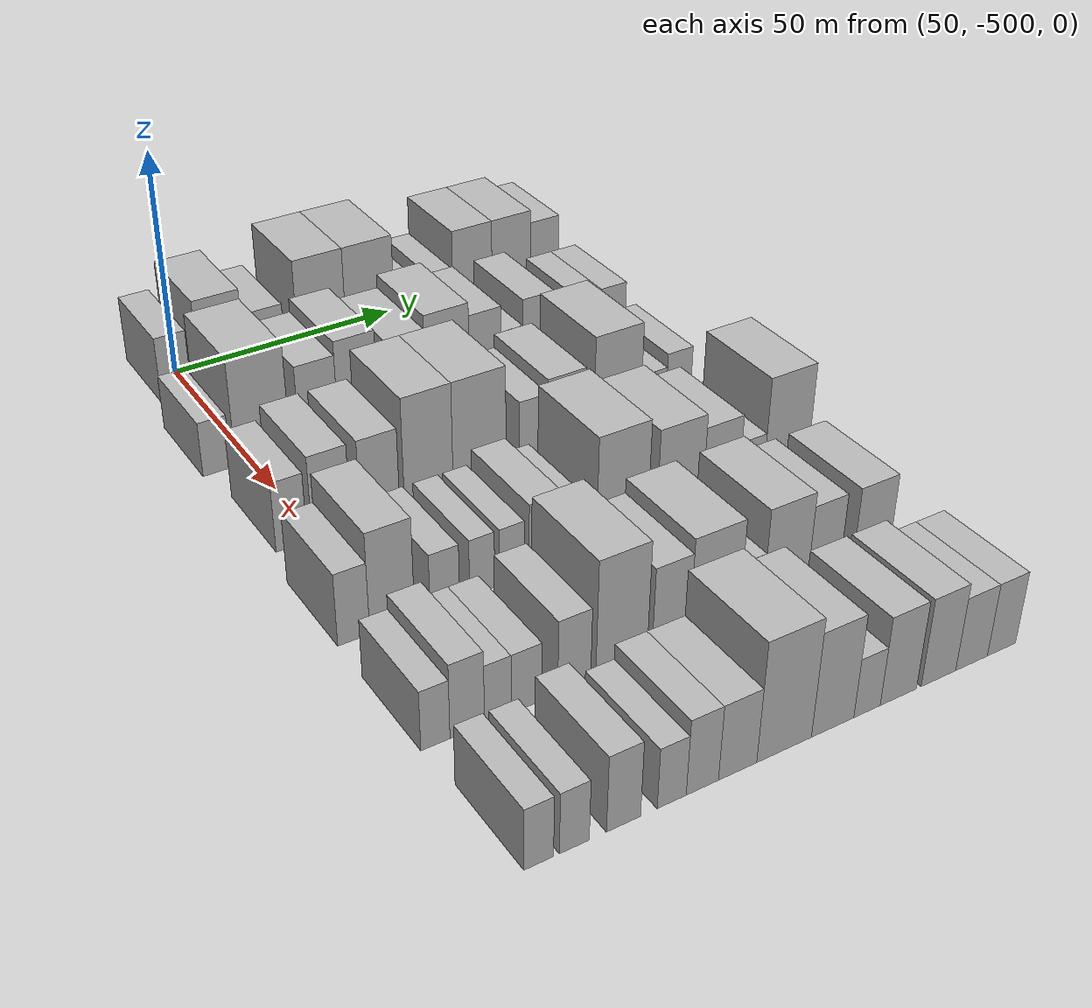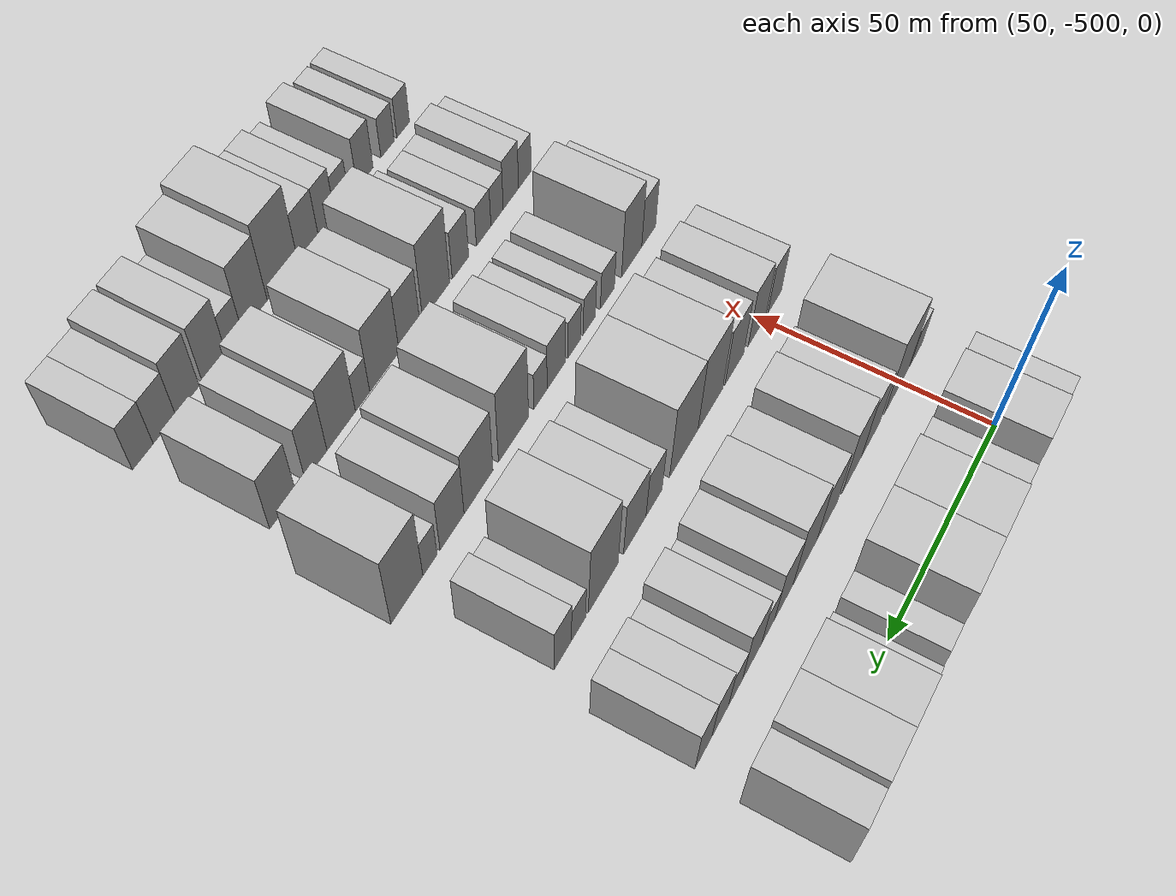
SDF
<sdf version="1.6">
 <world name="default">
  <model name="building_1">
   <static>1</static>
   <pose>50.0000 -503.6924 0 0.000000 0.000000 0.000000</pose>
   <link name="link">
    <pose>0 0 7.50 0 0 0</pose>
    <collision name="collision"><geometry><box><size>20.0000 6.6153 15.0000</size></box></geometry></collision>
    <visual name="visual">
     <cast_shadows>0</cast_shadows>
     <geometry><box><size>20.0000 6.6153 15.0000</size></box></geometry>
     <material>
      <script>
       <uri>model://HANNAS_wall/materials/scripts</uri>
       <uri>model://HANNAS_wall/materials/textures</uri>
       <name>vrc/HANNAS_wall</name>
      </script>
     </material>
    </visual>
   </link>
  </model>
  <model name="building_2">
   <static>1</static>
   <pose>50.0000 -493.3215 0 0.000000 0.000000 0.000000</pose>
   <link name="link">
    <pose>0 0 10.50 0 0 0</pose>
    <collision name="collision"><geometry><box><size>20.0000 10.1265 21.0000</size></box></geometry></collision>
    <visual name="visual">
     <cast_shadows>0</cast_shadows>
     <geometry><box><size>20.0000 10.1265 21.0000</size></box></geometry>
     <material>
      <script>
       <uri>model://HANNAS_wall/materials/scripts</uri>
       <uri>model://HANNAS_wall/materials/textures</uri>
       <name>vrc/HANNAS_wall</name>
      </script>
     </material>
    </visual>
   </link>
  </model>
  <model name="building_3">
   <static>1</static>
   <pose>50.0000 -482.7223 0 0.000000 0.000000 0.000000</pose>
   <link name="link">
    <pose>0 0 7.50 0 0 0</pose>
    <collision name="collision"><geometry><box><size>20.0000 7.0718 15.0000</size></box></geometry></collision>
    <visual name="visual">
     <cast_shadows>0</cast_shadows>
     <geometry><box><size>20.0000 7.0718 15.0000</size></box></geometry>
     <material>
      <script>
       <uri>model://HANNAS_wall/materials/scripts</uri>
       <uri>model://HANNAS_wall/materials/textures</uri>
       <name>vrc/HANNAS_wall</name>
      </script>
     </material>
    </visual>
   </link>
  </model>
  <model name="building_4">
   <static>1</static>
   <pose>50.0000 -470.5468 0 0.000000 0.000000 0.000000</pose>
   <link name="link">
    <pose>0 0 12.00 0 0 0</pose>
    <collision name="collision"><geometry><box><size>20.0000 11.2794 24.0000</size></box></geometry></collision>
    <visual name="visual">
     <cast_shadows>0</cast_shadows>
     <geometry><box><size>20.0000 11.2794 24.0000</size></box></geometry>
     <material>
      <script>
       <uri>model://HANNAS_wall/materials/scripts</uri>
       <uri>model://HANNAS_wall/materials/textures</uri>
       <name>vrc/HANNAS_wall</name>
      </script>
     </material>
    </visual>
   </link>
  </model>
  <model name="building_5">
   <static>1</static>
   <pose>50.0000 -459.0999 0 0.000000 0.000000 0.000000</pose>
   <link name="link">
    <pose>0 0 12.00 0 0 0</pose>
    <collision name="collision"><geometry><box><size>20.0000 11.6143 24.0000</size></box></geometry></collision>
    <visual name="visual">
     <cast_shadows>0</cast_shadows>
     <geometry><box><size>20.0000 11.6143 24.0000</size></box></geometry>
     <material>
      <script>
       <uri>model://HANNAS_wall/materials/scripts</uri>
       <uri>model://HANNAS_wall/materials/textures</uri>
       <name>vrc/HANNAS_wall</name>
      </script>
     </material>
    </visual>
   </link>
  </model>
  <model name="building_6">
   <static>1</static>
   <pose>50.0000 -450.4534 0 0.000000 0.000000 0.000000</pose>
   <link name="link">
    <pose>0 0 6.00 0 0 0</pose>
    <collision name="collision"><geometry><box><size>20.0000 5.6787 12.0000</size></box></geometry></collision>
    <visual name="visual">
     <cast_shadows>0</cast_shadows>
     <geometry><box><size>20.0000 5.6787 12.0000</size></box></geometry>
     <material>
      <script>
       <uri>model://HANNAS_wall/materials/scripts</uri>
       <uri>model://HANNAS_wall/materials/textures</uri>
       <name>vrc/HANNAS_wall</name>
      </script>
     </material>
    </visual>
   </link>
  </model>
  <model name="building_7">
   <static>1</static>
   <pose>50.0000 -441.7250 0 0.000000 0.000000 0.000000</pose>
   <link name="link">
    <pose>0 0 6.00 0 0 0</pose>
    <collision name="collision"><geometry><box><size>20.0000 5.7782 12.0000</size></box></geometry></collision>
    <visual name="visual">
     <cast_shadows>0</cast_shadows>
     <geometry><box><size>20.0000 5.7782 12.0000</size></box></geometry>
     <material>
      <script>
       <uri>model://HANNAS_wall/materials/scripts</uri>
       <uri>model://HANNAS_wall/materials/textures</uri>
       <name>vrc/HANNAS_wall</name>
      </script>
     </material>
    </visual>
   </link>
  </model>
  <model name="building_8">
   <static>1</static>
   <pose>50.0000 -433.8668 0 0.000000 0.000000 0.000000</pose>
   <link name="link">
    <pose>0 0 10.50 0 0 0</pose>
    <collision name="collision"><geometry><box><size>20.0000 9.9382 21.0000</size></box></geometry></collision>
    <visual name="visual">
     <cast_shadows>0</cast_shadows>
     <geometry><box><size>20.0000 9.9382 21.0000</size></box></geometry>
     <material>
      <script>
       <uri>model://HANNAS_wall/materials/scripts</uri>
       <uri>model://HANNAS_wall/materials/textures</uri>
       <name>vrc/HANNAS_wall</name>
      </script>
     </material>
    </visual>
   </link>
  </model>
  <model name="building_9">
   <static>1</static>
   <pose>50.0000 -423.8843 0 0.000000 0.000000 0.000000</pose>
   <link name="link">
    <pose>0 0 10.50 0 0 0</pose>
    <collision name="collision"><geometry><box><size>20.0000 10.0267 21.0000</size></box></geometry></collision>
    <visual name="visual">
     <cast_shadows>0</cast_shadows>
     <geometry><box><size>20.0000 10.0267 21.0000</size></box></geometry>
     <material>
      <script>
       <uri>model://HANNAS_wall/materials/scripts</uri>
       <uri>model://HANNAS_wall/materials/textures</uri>
       <name>vrc/HANNAS_wall</name>
      </script>
     </material>
    </visual>
   </link>
  </model>
  <model name="building_10">
   <static>1</static>
   <pose>50.0000 -415.1859 0 0.000000 0.000000 0.000000</pose>
   <link name="link">
    <pose>0 0 9.00 0 0 0</pose>
    <collision name="collision"><geometry><box><size>20.0000 7.3701 18.0000</size></box></geometry></collision>
    <visual name="visual">
     <cast_shadows>0</cast_shadows>
     <geometry><box><size>20.0000 7.3701 18.0000</size></box></geometry>
     <material>
      <script>
       <uri>model://HANNAS_wall/materials/scripts</uri>
       <uri>model://HANNAS_wall/materials/textures</uri>
       <name>vrc/HANNAS_wall</name>
      </script>
     </material>
    </visual>
   </link>
  </model>
  <model name="building_121">
   <static>1</static>
   <pose>79.0000 -507.1188 0 0.000000 0.000000 0.000000</pose>
   <link name="link">
    <pose>0 0 6.00 0 0 0</pose>
    <collision name="collision"><geometry><box><size>20.0000 5.7624 12.0000</size></box></geometry></collision>
    <visual name="visual">
     <cast_shadows>0</cast_shadows>
     <geometry><box><size>20.0000 5.7624 12.0000</size></box></geometry>
     <material>
      <script>
       <uri>model://HANNAS_wall/materials/scripts</uri>
       <uri>model://HANNAS_wall/materials/textures</uri>
       <name>vrc/HANNAS_wall</name>
      </script>
     </material>
    </visual>
   </link>
  </model>
  <model name="building_122">
   <static>1</static>
   <pose>79.0000 -497.4753 0 0.000000 0.000000 0.000000</pose>
   <link name="link">
    <pose>0 0 12.00 0 0 0</pose>
    <collision name="collision"><geometry><box><size>20.0000 11.5245 24.0000</size></box></geometry></collision>
    <visual name="visual">
     <cast_shadows>0</cast_shadows>
     <geometry><box><size>20.0000 11.5245 24.0000</size></box></geometry>
     <material>
      <script>
       <uri>model://HANNAS_wall/materials/scripts</uri>
       <uri>model://HANNAS_wall/materials/textures</uri>
       <name>vrc/HANNAS_wall</name>
      </script>
     </material>
    </visual>
   </link>
  </model>
  <model name="building_123">
   <static>1</static>
   <pose>79.0000 -485.4717 0 0.000000 0.000000 0.000000</pose>
   <link name="link">
    <pose>0 0 9.00 0 0 0</pose>
    <collision name="collision"><geometry><box><size>20.0000 8.4825 18.0000</size></box></geometry></collision>
    <visual name="visual">
     <cast_shadows>0</cast_shadows>
     <geometry><box><size>20.0000 8.4825 18.0000</size></box></geometry>
     <material>
      <script>
       <uri>model://HANNAS_wall/materials/scripts</uri>
       <uri>model://HANNAS_wall/materials/textures</uri>
       <name>vrc/HANNAS_wall</name>
      </script>
     </material>
    </visual>
   </link>
  </model>
  <model name="building_124">
   <static>1</static>
   <pose>79.0000 -476.8116 0 0.000000 0.000000 0.000000</pose>
   <link name="link">
    <pose>0 0 10.50 0 0 0</pose>
    <collision name="collision"><geometry><box><size>20.0000 8.8377 21.0000</size></box></geometry></collision>
    <visual name="visual">
     <cast_shadows>0</cast_shadows>
     <geometry><box><size>20.0000 8.8377 21.0000</size></box></geometry>
     <material>
      <script>
       <uri>model://HANNAS_wall/materials/scripts</uri>
       <uri>model://HANNAS_wall/materials/textures</uri>
       <name>vrc/HANNAS_wall</name>
      </script>
     </material>
    </visual>
   </link>
  </model>
  <model name="building_125">
   <static>1</static>
   <pose>79.0000 -465.9725 0 0.000000 0.000000 0.000000</pose>
   <link name="link">
    <pose>0 0 9.00 0 0 0</pose>
    <collision name="collision"><geometry><box><size>20.0000 8.8406 18.0000</size></box></geometry></collision>
    <visual name="visual">
     <cast_shadows>0</cast_shadows>
     <geometry><box><size>20.0000 8.8406 18.0000</size></box></geometry>
     <material>
      <script>
       <uri>model://HANNAS_wall/materials/scripts</uri>
       <uri>model://HANNAS_wall/materials/textures</uri>
       <name>vrc/HANNAS_wall</name>
      </script>
     </material>
    </visual>
   </link>
  </model>
  <model name="building_126">
   <static>1</static>
   <pose>79.0000 -456.4574 0 0.000000 0.000000 0.000000</pose>
   <link name="link">
    <pose>0 0 10.50 0 0 0</pose>
    <collision name="collision"><geometry><box><size>20.0000 10.1897 21.0000</size></box></geometry></collision>
    <visual name="visual">
     <cast_shadows>0</cast_shadows>
     <geometry><box><size>20.0000 10.1897 21.0000</size></box></geometry>
     <material>
      <script>
       <uri>model://HANNAS_wall/materials/scripts</uri>
       <uri>model://HANNAS_wall/materials/textures</uri>
       <name>vrc/HANNAS_wall</name>
      </script>
     </material>
    </visual>
   </link>
  </model>
  <model name="building_127">
   <static>1</static>
   <pose>79.0000 -447.5416 0 0.000000 0.000000 0.000000</pose>
   <link name="link">
    <pose>0 0 9.00 0 0 0</pose>
    <collision name="collision"><geometry><box><size>20.0000 7.6418 18.0000</size></box></geometry></collision>
    <visual name="visual">
     <cast_shadows>0</cast_shadows>
     <geometry><box><size>20.0000 7.6418 18.0000</size></box></geometry>
     <material>
      <script>
       <uri>model://HANNAS_wall/materials/scripts</uri>
       <uri>model://HANNAS_wall/materials/textures</uri>
       <name>vrc/HANNAS_wall</name>
      </script>
     </material>
    </visual>
   </link>
  </model>
  <model name="building_128">
   <static>1</static>
   <pose>79.0000 -441.1607 0 0.000000 0.000000 0.000000</pose>
   <link name="link">
    <pose>0 0 6.00 0 0 0</pose>
    <collision name="collision"><geometry><box><size>20.0000 5.1200 12.0000</size></box></geometry></collision>
    <visual name="visual">
     <cast_shadows>0</cast_shadows>
     <geometry><box><size>20.0000 5.1200 12.0000</size></box></geometry>
     <material>
      <script>
       <uri>model://HANNAS_wall/materials/scripts</uri>
       <uri>model://HANNAS_wall/materials/textures</uri>
       <name>vrc/HANNAS_wall</name>
      </script>
     </material>
    </visual>
   </link>
  </model>
  <model name="building_129">
   <static>1</static>
   <pose>79.0000 -434.8009 0 0.000000 0.000000 0.000000</pose>
   <link name="link">
    <pose>0 0 9.00 0 0 0</pose>
    <collision name="collision"><geometry><box><size>20.0000 7.5995 18.0000</size></box></geometry></collision>
    <visual name="visual">
     <cast_shadows>0</cast_shadows>
     <geometry><box><size>20.0000 7.5995 18.0000</size></box></geometry>
     <material>
      <script>
       <uri>model://HANNAS_wall/materials/scripts</uri>
       <uri>model://HANNAS_wall/materials/textures</uri>
       <name>vrc/HANNAS_wall</name>
      </script>
     </material>
    </visual>
   </link>
  </model>
  <model name="building_130">
   <static>1</static>
   <pose>79.0000 -428.3066 0 0.000000 0.000000 0.000000</pose>
   <link name="link">
    <pose>0 0 6.00 0 0 0</pose>
    <collision name="collision"><geometry><box><size>20.0000 5.3893 12.0000</size></box></geometry></collision>
    <visual name="visual">
     <cast_shadows>0</cast_shadows>
     <geometry><box><size>20.0000 5.3893 12.0000</size></box></geometry>
     <material>
      <script>
       <uri>model://HANNAS_wall/materials/scripts</uri>
       <uri>model://HANNAS_wall/materials/textures</uri>
       <name>vrc/HANNAS_wall</name>
      </script>
     </material>
    </visual>
   </link>
  </model>
  <model name="building_131">
   <static>1</static>
   <pose>79.0000 -422.4465 0 0.000000 0.000000 0.000000</pose>
   <link name="link">
    <pose>0 0 7.50 0 0 0</pose>
    <collision name="collision"><geometry><box><size>20.0000 6.3309 15.0000</size></box></geometry></collision>
    <visual name="visual">
     <cast_shadows>0</cast_shadows>
     <geometry><box><size>20.0000 6.3309 15.0000</size></box></geometry>
     <material>
      <script>
       <uri>model://HANNAS_wall/materials/scripts</uri>
       <uri>model://HANNAS_wall/materials/textures</uri>
       <name>vrc/HANNAS_wall</name>
      </script>
     </material>
    </visual>
   </link>
  </model>
  <model name="building_132">
   <static>1</static>
   <pose>79.0000 -416.1409 0 0.000000 0.000000 0.000000</pose>
   <link name="link">
    <pose>0 0 7.50 0 0 0</pose>
    <collision name="collision"><geometry><box><size>20.0000 6.2803 15.0000</size></box></geometry></collision>
    <visual name="visual">
     <cast_shadows>0</cast_shadows>
     <geometry><box><size>20.0000 6.2803 15.0000</size></box></geometry>
     <material>
      <script>
       <uri>model://HANNAS_wall/materials/scripts</uri>
       <uri>model://HANNAS_wall/materials/textures</uri>
       <name>vrc/HANNAS_wall</name>
      </script>
     </material>
    </visual>
   </link>
  </model>
  <model name="building_234">
   <static>1</static>
   <pose>108.0000 -504.9116 0 0.000000 0.000000 0.000000</pose>
   <link name="link">
    <pose>0 0 7.50 0 0 0</pose>
    <collision name="collision"><geometry><box><size>20.0000 6.1769 15.0000</size></box></geometry></collision>
    <visual name="visual">
     <cast_shadows>0</cast_shadows>
     <geometry><box><size>20.0000 6.1769 15.0000</size></box></geometry>
     <material>
      <script>
       <uri>model://HANNAS_wall/materials/scripts</uri>
       <uri>model://HANNAS_wall/materials/textures</uri>
       <name>vrc/HANNAS_wall</name>
      </script>
     </material>
    </visual>
   </link>
  </model>
  <model name="building_235">
   <static>1</static>
   <pose>108.0000 -496.9345 0 0.000000 0.000000 0.000000</pose>
   <link name="link">
    <pose>0 0 9.00 0 0 0</pose>
    <collision name="collision"><geometry><box><size>20.0000 7.7774 18.0000</size></box></geometry></collision>
    <visual name="visual">
     <cast_shadows>0</cast_shadows>
     <geometry><box><size>20.0000 7.7774 18.0000</size></box></geometry>
     <material>
      <script>
       <uri>model://HANNAS_wall/materials/scripts</uri>
       <uri>model://HANNAS_wall/materials/textures</uri>
       <name>vrc/HANNAS_wall</name>
      </script>
     </material>
    </visual>
   </link>
  </model>
  <model name="building_236">
   <static>1</static>
   <pose>108.0000 -486.9837 0 0.000000 0.000000 0.000000</pose>
   <link name="link">
    <pose>0 0 9.00 0 0 0</pose>
    <collision name="collision"><geometry><box><size>20.0000 8.1242 18.0000</size></box></geometry></collision>
    <visual name="visual">
     <cast_shadows>0</cast_shadows>
     <geometry><box><size>20.0000 8.1242 18.0000</size></box></geometry>
     <material>
      <script>
       <uri>model://HANNAS_wall/materials/scripts</uri>
       <uri>model://HANNAS_wall/materials/textures</uri>
       <name>vrc/HANNAS_wall</name>
      </script>
     </material>
    </visual>
   </link>
  </model>
  <model name="building_237">
   <static>1</static>
   <pose>108.0000 -476.7331 0 0.000000 0.000000 0.000000</pose>
   <link name="link">
    <pose>0 0 12.00 0 0 0</pose>
    <collision name="collision"><geometry><box><size>20.0000 10.3768 24.0000</size></box></geometry></collision>
    <visual name="visual">
     <cast_shadows>0</cast_shadows>
     <geometry><box><size>20.0000 10.3768 24.0000</size></box></geometry>
     <material>
      <script>
       <uri>model://HANNAS_wall/materials/scripts</uri>
       <uri>model://HANNAS_wall/materials/textures</uri>
       <name>vrc/HANNAS_wall</name>
      </script>
     </material>
    </visual>
   </link>
  </model>
  <model name="building_238">
   <static>1</static>
   <pose>108.0000 -465.7569 0 0.000000 0.000000 0.000000</pose>
   <link name="link">
    <pose>0 0 12.00 0 0 0</pose>
    <collision name="collision"><geometry><box><size>20.0000 11.5756 24.0000</size></box></geometry></collision>
    <visual name="visual">
     <cast_shadows>0</cast_shadows>
     <geometry><box><size>20.0000 11.5756 24.0000</size></box></geometry>
     <material>
      <script>
       <uri>model://HANNAS_wall/materials/scripts</uri>
       <uri>model://HANNAS_wall/materials/textures</uri>
       <name>vrc/HANNAS_wall</name>
      </script>
     </material>
    </visual>
   </link>
  </model>
  <model name="building_239">
   <static>1</static>
   <pose>108.0000 -453.8092 0 0.000000 0.000000 0.000000</pose>
   <link name="link">
    <pose>0 0 7.50 0 0 0</pose>
    <collision name="collision"><geometry><box><size>20.0000 6.3198 15.0000</size></box></geometry></collision>
    <visual name="visual">
     <cast_shadows>0</cast_shadows>
     <geometry><box><size>20.0000 6.3198 15.0000</size></box></geometry>
     <material>
      <script>
       <uri>model://HANNAS_wall/materials/scripts</uri>
       <uri>model://HANNAS_wall/materials/textures</uri>
       <name>vrc/HANNAS_wall</name>
      </script>
     </material>
    </visual>
   </link>
  </model>
  <model name="building_240">
   <static>1</static>
   <pose>108.0000 -446.3265 0 0.000000 0.000000 0.000000</pose>
   <link name="link">
    <pose>0 0 9.00 0 0 0</pose>
    <collision name="collision"><geometry><box><size>20.0000 8.6454 18.0000</size></box></geometry></collision>
    <visual name="visual">
     <cast_shadows>0</cast_shadows>
     <geometry><box><size>20.0000 8.6454 18.0000</size></box></geometry>
     <material>
      <script>
       <uri>model://HANNAS_wall/materials/scripts</uri>
       <uri>model://HANNAS_wall/materials/textures</uri>
       <name>vrc/HANNAS_wall</name>
      </script>
     </material>
    </visual>
   </link>
  </model>
  <model name="building_241">
   <static>1</static>
   <pose>108.0000 -434.4666 0 0.000000 0.000000 0.000000</pose>
   <link name="link">
    <pose>0 0 12.00 0 0 0</pose>
    <collision name="collision"><geometry><box><size>20.0000 11.0745 24.0000</size></box></geometry></collision>
    <visual name="visual">
     <cast_shadows>0</cast_shadows>
     <geometry><box><size>20.0000 11.0745 24.0000</size></box></geometry>
     <material>
      <script>
       <uri>model://HANNAS_wall/materials/scripts</uri>
       <uri>model://HANNAS_wall/materials/textures</uri>
       <name>vrc/HANNAS_wall</name>
      </script>
     </material>
    </visual>
   </link>
  </model>
  <model name="building_242">
   <static>1</static>
   <pose>108.0000 -425.3738 0 0.000000 0.000000 0.000000</pose>
   <link name="link">
    <pose>0 0 6.00 0 0 0</pose>
    <collision name="collision"><geometry><box><size>20.0000 5.1111 12.0000</size></box></geometry></collision>
    <visual name="visual">
     <cast_shadows>0</cast_shadows>
     <geometry><box><size>20.0000 5.1111 12.0000</size></box></geometry>
     <material>
      <script>
       <uri>model://HANNAS_wall/materials/scripts</uri>
       <uri>model://HANNAS_wall/materials/textures</uri>
       <name>vrc/HANNAS_wall</name>
      </script>
     </material>
    </visual>
   </link>
  </model>
  <model name="building_243">
   <static>1</static>
   <pose>108.0000 -419.8062 0 0.000000 0.000000 0.000000</pose>
   <link name="link">
    <pose>0 0 7.50 0 0 0</pose>
    <collision name="collision"><geometry><box><size>20.0000 6.0240 15.0000</size></box></geometry></collision>
    <visual name="visual">
     <cast_shadows>0</cast_shadows>
     <geometry><box><size>20.0000 6.0240 15.0000</size></box></geometry>
     <material>
      <script>
       <uri>model://HANNAS_wall/materials/scripts</uri>
       <uri>model://HANNAS_wall/materials/textures</uri>
       <name>vrc/HANNAS_wall</name>
      </script>
     </material>
    </visual>
   </link>
  </model>
  <model name="building_346">
   <static>1</static>
   <pose>137.0000 -506.9981 0 0.000000 0.000000 0.000000</pose>
   <link name="link">
    <pose>0 0 7.50 0 0 0</pose>
    <collision name="collision"><geometry><box><size>20.0000 6.0037 15.0000</size></box></geometry></collision>
    <visual name="visual">
     <cast_shadows>0</cast_shadows>
     <geometry><box><size>20.0000 6.0037 15.0000</size></box></geometry>
     <material>
      <script>
       <uri>model://HANNAS_wall/materials/scripts</uri>
       <uri>model://HANNAS_wall/materials/textures</uri>
       <name>vrc/HANNAS_wall</name>
      </script>
     </material>
    </visual>
   </link>
  </model>
  <model name="building_347">
   <static>1</static>
   <pose>137.0000 -499.7163 0 0.000000 0.000000 0.000000</pose>
   <link name="link">
    <pose>0 0 10.50 0 0 0</pose>
    <collision name="collision"><geometry><box><size>20.0000 8.5599 21.0000</size></box></geometry></collision>
    <visual name="visual">
     <cast_shadows>0</cast_shadows>
     <geometry><box><size>20.0000 8.5599 21.0000</size></box></geometry>
     <material>
      <script>
       <uri>model://HANNAS_wall/materials/scripts</uri>
       <uri>model://HANNAS_wall/materials/textures</uri>
       <name>vrc/HANNAS_wall</name>
      </script>
     </material>
    </visual>
   </link>
  </model>
  <model name="building_348">
   <static>1</static>
   <pose>137.0000 -489.5356 0 0.000000 0.000000 0.000000</pose>
   <link name="link">
    <pose>0 0 6.00 0 0 0</pose>
    <collision name="collision"><geometry><box><size>20.0000 5.8016 12.0000</size></box></geometry></collision>
    <visual name="visual">
     <cast_shadows>0</cast_shadows>
     <geometry><box><size>20.0000 5.8016 12.0000</size></box></geometry>
     <material>
      <script>
       <uri>model://HANNAS_wall/materials/scripts</uri>
       <uri>model://HANNAS_wall/materials/textures</uri>
       <name>vrc/HANNAS_wall</name>
      </script>
     </material>
    </visual>
   </link>
  </model>
  <model name="building_349">
   <static>1</static>
   <pose>137.0000 -482.1222 0 0.000000 0.000000 0.000000</pose>
   <link name="link">
    <pose>0 0 6.00 0 0 0</pose>
    <collision name="collision"><geometry><box><size>20.0000 5.0252 12.0000</size></box></geometry></collision>
    <visual name="visual">
     <cast_shadows>0</cast_shadows>
     <geometry><box><size>20.0000 5.0252 12.0000</size></box></geometry>
     <material>
      <script>
       <uri>model://HANNAS_wall/materials/scripts</uri>
       <uri>model://HANNAS_wall/materials/textures</uri>
       <name>vrc/HANNAS_wall</name>
      </script>
     </material>
    </visual>
   </link>
  </model>
  <model name="building_350">
   <static>1</static>
   <pose>137.0000 -476.0917 0 0.000000 0.000000 0.000000</pose>
   <link name="link">
    <pose>0 0 6.00 0 0 0</pose>
    <collision name="collision"><geometry><box><size>20.0000 5.0357 12.0000</size></box></geometry></collision>
    <visual name="visual">
     <cast_shadows>0</cast_shadows>
     <geometry><box><size>20.0000 5.0357 12.0000</size></box></geometry>
     <material>
      <script>
       <uri>model://HANNAS_wall/materials/scripts</uri>
       <uri>model://HANNAS_wall/materials/textures</uri>
       <name>vrc/HANNAS_wall</name>
      </script>
     </material>
    </visual>
   </link>
  </model>
  <model name="building_351">
   <static>1</static>
   <pose>137.0000 -469.0323 0 0.000000 0.000000 0.000000</pose>
   <link name="link">
    <pose>0 0 7.50 0 0 0</pose>
    <collision name="collision"><geometry><box><size>20.0000 7.0832 15.0000</size></box></geometry></collision>
    <visual name="visual">
     <cast_shadows>0</cast_shadows>
     <geometry><box><size>20.0000 7.0832 15.0000</size></box></geometry>
     <material>
      <script>
       <uri>model://HANNAS_wall/materials/scripts</uri>
       <uri>model://HANNAS_wall/materials/textures</uri>
       <name>vrc/HANNAS_wall</name>
      </script>
     </material>
    </visual>
   </link>
  </model>
  <model name="building_352">
   <static>1</static>
   <pose>137.0000 -462.9619 0 0.000000 0.000000 0.000000</pose>
   <link name="link">
    <pose>0 0 6.00 0 0 0</pose>
    <collision name="collision"><geometry><box><size>20.0000 5.0574 12.0000</size></box></geometry></collision>
    <visual name="visual">
     <cast_shadows>0</cast_shadows>
     <geometry><box><size>20.0000 5.0574 12.0000</size></box></geometry>
     <material>
      <script>
       <uri>model://HANNAS_wall/materials/scripts</uri>
       <uri>model://HANNAS_wall/materials/textures</uri>
       <name>vrc/HANNAS_wall</name>
      </script>
     </material>
    </visual>
   </link>
  </model>
  <model name="building_353">
   <static>1</static>
   <pose>137.0000 -452.8629 0 0.000000 0.000000 0.000000</pose>
   <link name="link">
    <pose>0 0 12.00 0 0 0</pose>
    <collision name="collision"><geometry><box><size>20.0000 11.1407 24.0000</size></box></geometry></collision>
    <visual name="visual">
     <cast_shadows>0</cast_shadows>
     <geometry><box><size>20.0000 11.1407 24.0000</size></box></geometry>
     <material>
      <script>
       <uri>model://HANNAS_wall/materials/scripts</uri>
       <uri>model://HANNAS_wall/materials/textures</uri>
       <name>vrc/HANNAS_wall</name>
      </script>
     </material>
    </visual>
   </link>
  </model>
  <model name="building_354">
   <static>1</static>
   <pose>137.0000 -440.1337 0 0.000000 0.000000 0.000000</pose>
   <link name="link">
    <pose>0 0 10.50 0 0 0</pose>
    <collision name="collision"><geometry><box><size>20.0000 10.3176 21.0000</size></box></geometry></collision>
    <visual name="visual">
     <cast_shadows>0</cast_shadows>
     <geometry><box><size>20.0000 10.3176 21.0000</size></box></geometry>
     <material>
      <script>
       <uri>model://HANNAS_wall/materials/scripts</uri>
       <uri>model://HANNAS_wall/materials/textures</uri>
       <name>vrc/HANNAS_wall</name>
      </script>
     </material>
    </visual>
   </link>
  </model>
  <model name="building_355">
   <static>1</static>
   <pose>137.0000 -430.7899 0 0.000000 0.000000 0.000000</pose>
   <link name="link">
    <pose>0 0 9.00 0 0 0</pose>
    <collision name="collision"><geometry><box><size>20.0000 8.3700 18.0000</size></box></geometry></collision>
    <visual name="visual">
     <cast_shadows>0</cast_shadows>
     <geometry><box><size>20.0000 8.3700 18.0000</size></box></geometry>
     <material>
      <script>
       <uri>model://HANNAS_wall/materials/scripts</uri>
       <uri>model://HANNAS_wall/materials/textures</uri>
       <name>vrc/HANNAS_wall</name>
      </script>
     </material>
    </visual>
   </link>
  </model>
  <model name="building_356">
   <static>1</static>
   <pose>137.0000 -423.1994 0 0.000000 0.000000 0.000000</pose>
   <link name="link">
    <pose>0 0 6.00 0 0 0</pose>
    <collision name="collision"><geometry><box><size>20.0000 4.8111 12.0000</size></box></geometry></collision>
    <visual name="visual">
     <cast_shadows>0</cast_shadows>
     <geometry><box><size>20.0000 4.8111 12.0000</size></box></geometry>
     <material>
      <script>
       <uri>model://HANNAS_wall/materials/scripts</uri>
       <uri>model://HANNAS_wall/materials/textures</uri>
       <name>vrc/HANNAS_wall</name>
      </script>
     </material>
    </visual>
   </link>
  </model>
  <model name="building_357">
   <static>1</static>
   <pose>137.0000 -415.4820 0 0.000000 0.000000 0.000000</pose>
   <link name="link">
    <pose>0 0 12.00 0 0 0</pose>
    <collision name="collision"><geometry><box><size>20.0000 10.6236 24.0000</size></box></geometry></collision>
    <visual name="visual">
     <cast_shadows>0</cast_shadows>
     <geometry><box><size>20.0000 10.6236 24.0000</size></box></geometry>
     <material>
      <script>
       <uri>model://HANNAS_wall/materials/scripts</uri>
       <uri>model://HANNAS_wall/materials/textures</uri>
       <name>vrc/HANNAS_wall</name>
      </script>
     </material>
    </visual>
   </link>
  </model>
  <model name="building_450">
   <static>1</static>
   <pose>166.0000 -507.4118 0 0.000000 0.000000 0.000000</pose>
   <link name="link">
    <pose>0 0 6.00 0 0 0</pose>
    <collision name="collision"><geometry><box><size>20.0000 5.1764 12.0000</size></box></geometry></collision>
    <visual name="visual">
     <cast_shadows>0</cast_shadows>
     <geometry><box><size>20.0000 5.1764 12.0000</size></box></geometry>
     <material>
      <script>
       <uri>model://HANNAS_wall/materials/scripts</uri>
       <uri>model://HANNAS_wall/materials/textures</uri>
       <name>vrc/HANNAS_wall</name>
      </script>
     </material>
    </visual>
   </link>
  </model>
  <model name="building_451">
   <static>1</static>
   <pose>166.0000 -501.7156 0 0.000000 0.000000 0.000000</pose>
   <link name="link">
    <pose>0 0 7.50 0 0 0</pose>
    <collision name="collision"><geometry><box><size>20.0000 6.2160 15.0000</size></box></geometry></collision>
    <visual name="visual">
     <cast_shadows>0</cast_shadows>
     <geometry><box><size>20.0000 6.2160 15.0000</size></box></geometry>
     <material>
      <script>
       <uri>model://HANNAS_wall/materials/scripts</uri>
       <uri>model://HANNAS_wall/materials/textures</uri>
       <name>vrc/HANNAS_wall</name>
      </script>
     </material>
    </visual>
   </link>
  </model>
  <model name="building_452">
   <static>1</static>
   <pose>166.0000 -496.1476 0 0.000000 0.000000 0.000000</pose>
   <link name="link">
    <pose>0 0 6.00 0 0 0</pose>
    <collision name="collision"><geometry><box><size>20.0000 4.9200 12.0000</size></box></geometry></collision>
    <visual name="visual">
     <cast_shadows>0</cast_shadows>
     <geometry><box><size>20.0000 4.9200 12.0000</size></box></geometry>
     <material>
      <script>
       <uri>model://HANNAS_wall/materials/scripts</uri>
       <uri>model://HANNAS_wall/materials/textures</uri>
       <name>vrc/HANNAS_wall</name>
      </script>
     </material>
    </visual>
   </link>
  </model>
  <model name="building_453">
   <static>1</static>
   <pose>166.0000 -490.8192 0 0.000000 0.000000 0.000000</pose>
   <link name="link">
    <pose>0 0 6.00 0 0 0</pose>
    <collision name="collision"><geometry><box><size>20.0000 5.7369 12.0000</size></box></geometry></collision>
    <visual name="visual">
     <cast_shadows>0</cast_shadows>
     <geometry><box><size>20.0000 5.7369 12.0000</size></box></geometry>
     <material>
      <script>
       <uri>model://HANNAS_wall/materials/scripts</uri>
       <uri>model://HANNAS_wall/materials/textures</uri>
       <name>vrc/HANNAS_wall</name>
      </script>
     </material>
    </visual>
   </link>
  </model>
  <model name="building_454">
   <static>1</static>
   <pose>166.0000 -481.7869 0 0.000000 0.000000 0.000000</pose>
   <link name="link">
    <pose>0 0 7.50 0 0 0</pose>
    <collision name="collision"><geometry><box><size>20.0000 6.3276 15.0000</size></box></geometry></collision>
    <visual name="visual">
     <cast_shadows>0</cast_shadows>
     <geometry><box><size>20.0000 6.3276 15.0000</size></box></geometry>
     <material>
      <script>
       <uri>model://HANNAS_wall/materials/scripts</uri>
       <uri>model://HANNAS_wall/materials/textures</uri>
       <name>vrc/HANNAS_wall</name>
      </script>
     </material>
    </visual>
   </link>
  </model>
  <model name="building_455">
   <static>1</static>
   <pose>166.0000 -472.5692 0 0.000000 0.000000 0.000000</pose>
   <link name="link">
    <pose>0 0 12.00 0 0 0</pose>
    <collision name="collision"><geometry><box><size>20.0000 10.1078 24.0000</size></box></geometry></collision>
    <visual name="visual">
     <cast_shadows>0</cast_shadows>
     <geometry><box><size>20.0000 10.1078 24.0000</size></box></geometry>
     <material>
      <script>
       <uri>model://HANNAS_wall/materials/scripts</uri>
       <uri>model://HANNAS_wall/materials/textures</uri>
       <name>vrc/HANNAS_wall</name>
      </script>
     </material>
    </visual>
   </link>
  </model>
  <model name="building_456">
   <static>1</static>
   <pose>166.0000 -462.7193 0 0.000000 0.000000 0.000000</pose>
   <link name="link">
    <pose>0 0 9.00 0 0 0</pose>
    <collision name="collision"><geometry><box><size>20.0000 7.5921 18.0000</size></box></geometry></collision>
    <visual name="visual">
     <cast_shadows>0</cast_shadows>
     <geometry><box><size>20.0000 7.5921 18.0000</size></box></geometry>
     <material>
      <script>
       <uri>model://HANNAS_wall/materials/scripts</uri>
       <uri>model://HANNAS_wall/materials/textures</uri>
       <name>vrc/HANNAS_wall</name>
      </script>
     </material>
    </visual>
   </link>
  </model>
  <model name="building_457">
   <static>1</static>
   <pose>166.0000 -453.7021 0 0.000000 0.000000 0.000000</pose>
   <link name="link">
    <pose>0 0 10.50 0 0 0</pose>
    <collision name="collision"><geometry><box><size>20.0000 10.4423 21.0000</size></box></geometry></collision>
    <visual name="visual">
     <cast_shadows>0</cast_shadows>
     <geometry><box><size>20.0000 10.4423 21.0000</size></box></geometry>
     <material>
      <script>
       <uri>model://HANNAS_wall/materials/scripts</uri>
       <uri>model://HANNAS_wall/materials/textures</uri>
       <name>vrc/HANNAS_wall</name>
      </script>
     </material>
    </visual>
   </link>
  </model>
  <model name="building_458">
   <static>1</static>
   <pose>166.0000 -446.0016 0 0.000000 0.000000 0.000000</pose>
   <link name="link">
    <pose>0 0 6.00 0 0 0</pose>
    <collision name="collision"><geometry><box><size>20.0000 4.9586 12.0000</size></box></geometry></collision>
    <visual name="visual">
     <cast_shadows>0</cast_shadows>
     <geometry><box><size>20.0000 4.9586 12.0000</size></box></geometry>
     <material>
      <script>
       <uri>model://HANNAS_wall/materials/scripts</uri>
       <uri>model://HANNAS_wall/materials/textures</uri>
       <name>vrc/HANNAS_wall</name>
      </script>
     </material>
    </visual>
   </link>
  </model>
  <model name="building_459">
   <static>1</static>
   <pose>166.0000 -438.6650 0 0.000000 0.000000 0.000000</pose>
   <link name="link">
    <pose>0 0 10.50 0 0 0</pose>
    <collision name="collision"><geometry><box><size>20.0000 9.7146 21.0000</size></box></geometry></collision>
    <visual name="visual">
     <cast_shadows>0</cast_shadows>
     <geometry><box><size>20.0000 9.7146 21.0000</size></box></geometry>
     <material>
      <script>
       <uri>model://HANNAS_wall/materials/scripts</uri>
       <uri>model://HANNAS_wall/materials/textures</uri>
       <name>vrc/HANNAS_wall</name>
      </script>
     </material>
    </visual>
   </link>
  </model>
  <model name="building_460">
   <static>1</static>
   <pose>166.0000 -430.1979 0 0.000000 0.000000 0.000000</pose>
   <link name="link">
    <pose>0 0 9.00 0 0 0</pose>
    <collision name="collision"><geometry><box><size>20.0000 7.2195 18.0000</size></box></geometry></collision>
    <visual name="visual">
     <cast_shadows>0</cast_shadows>
     <geometry><box><size>20.0000 7.2195 18.0000</size></box></geometry>
     <material>
      <script>
       <uri>model://HANNAS_wall/materials/scripts</uri>
       <uri>model://HANNAS_wall/materials/textures</uri>
       <name>vrc/HANNAS_wall</name>
      </script>
     </material>
    </visual>
   </link>
  </model>
  <model name="building_461">
   <static>1</static>
   <pose>166.0000 -419.3604 0 0.000000 0.000000 0.000000</pose>
   <link name="link">
    <pose>0 0 9.00 0 0 0</pose>
    <collision name="collision"><geometry><box><size>20.0000 8.4557 18.0000</size></box></geometry></collision>
    <visual name="visual">
     <cast_shadows>0</cast_shadows>
     <geometry><box><size>20.0000 8.4557 18.0000</size></box></geometry>
     <material>
      <script>
       <uri>model://HANNAS_wall/materials/scripts</uri>
       <uri>model://HANNAS_wall/materials/textures</uri>
       <name>vrc/HANNAS_wall</name>
      </script>
     </material>
    </visual>
   </link>
  </model>
  <model name="building_566">
   <static>1</static>
   <pose>195.0000 -506.4964 0 0.000000 0.000000 0.000000</pose>
   <link name="link">
    <pose>0 0 6.00 0 0 0</pose>
    <collision name="collision"><geometry><box><size>20.0000 5.0071 12.0000</size></box></geometry></collision>
    <visual name="visual">
     <cast_shadows>0</cast_shadows>
     <geometry><box><size>20.0000 5.0071 12.0000</size></box></geometry>
     <material>
      <script>
       <uri>model://HANNAS_wall/materials/scripts</uri>
       <uri>model://HANNAS_wall/materials/textures</uri>
       <name>vrc/HANNAS_wall</name>
      </script>
     </material>
    </visual>
   </link>
  </model>
  <model name="building_567">
   <static>1</static>
   <pose>195.0000 -500.4143 0 0.000000 0.000000 0.000000</pose>
   <link name="link">
    <pose>0 0 6.00 0 0 0</pose>
    <collision name="collision"><geometry><box><size>20.0000 5.1571 12.0000</size></box></geometry></collision>
    <visual name="visual">
     <cast_shadows>0</cast_shadows>
     <geometry><box><size>20.0000 5.1571 12.0000</size></box></geometry>
     <material>
      <script>
       <uri>model://HANNAS_wall/materials/scripts</uri>
       <uri>model://HANNAS_wall/materials/textures</uri>
       <name>vrc/HANNAS_wall</name>
      </script>
     </material>
    </visual>
   </link>
  </model>
  <model name="building_568">
   <static>1</static>
   <pose>195.0000 -491.8082 0 0.000000 0.000000 0.000000</pose>
   <link name="link">
    <pose>0 0 7.50 0 0 0</pose>
    <collision name="collision"><geometry><box><size>20.0000 6.0551 15.0000</size></box></geometry></collision>
    <visual name="visual">
     <cast_shadows>0</cast_shadows>
     <geometry><box><size>20.0000 6.0551 15.0000</size></box></geometry>
     <material>
      <script>
       <uri>model://HANNAS_wall/materials/scripts</uri>
       <uri>model://HANNAS_wall/materials/textures</uri>
       <name>vrc/HANNAS_wall</name>
      </script>
     </material>
    </visual>
   </link>
  </model>
  <model name="building_569">
   <static>1</static>
   <pose>195.0000 -483.1278 0 0.000000 0.000000 0.000000</pose>
   <link name="link">
    <pose>0 0 6.00 0 0 0</pose>
    <collision name="collision"><geometry><box><size>20.0000 5.3057 12.0000</size></box></geometry></collision>
    <visual name="visual">
     <cast_shadows>0</cast_shadows>
     <geometry><box><size>20.0000 5.3057 12.0000</size></box></geometry>
     <material>
      <script>
       <uri>model://HANNAS_wall/materials/scripts</uri>
       <uri>model://HANNAS_wall/materials/textures</uri>
       <name>vrc/HANNAS_wall</name>
      </script>
     </material>
    </visual>
   </link>
  </model>
  <model name="building_570">
   <static>1</static>
   <pose>195.0000 -477.4681 0 0.000000 0.000000 0.000000</pose>
   <link name="link">
    <pose>0 0 7.50 0 0 0</pose>
    <collision name="collision"><geometry><box><size>20.0000 6.0137 15.0000</size></box></geometry></collision>
    <visual name="visual">
     <cast_shadows>0</cast_shadows>
     <geometry><box><size>20.0000 6.0137 15.0000</size></box></geometry>
     <material>
      <script>
       <uri>model://HANNAS_wall/materials/scripts</uri>
       <uri>model://HANNAS_wall/materials/textures</uri>
       <name>vrc/HANNAS_wall</name>
      </script>
     </material>
    </visual>
   </link>
  </model>
  <model name="building_571">
   <static>1</static>
   <pose>195.0000 -470.8102 0 0.000000 0.000000 0.000000</pose>
   <link name="link">
    <pose>0 0 7.50 0 0 0</pose>
    <collision name="collision"><geometry><box><size>20.0000 7.3022 15.0000</size></box></geometry></collision>
    <visual name="visual">
     <cast_shadows>0</cast_shadows>
     <geometry><box><size>20.0000 7.3022 15.0000</size></box></geometry>
     <material>
      <script>
       <uri>model://HANNAS_wall/materials/scripts</uri>
       <uri>model://HANNAS_wall/materials/textures</uri>
       <name>vrc/HANNAS_wall</name>
      </script>
     </material>
    </visual>
   </link>
  </model>
  <model name="building_572">
   <static>1</static>
   <pose>195.0000 -461.7866 0 0.000000 0.000000 0.000000</pose>
   <link name="link">
    <pose>0 0 12.00 0 0 0</pose>
    <collision name="collision"><geometry><box><size>20.0000 10.7451 24.0000</size></box></geometry></collision>
    <visual name="visual">
     <cast_shadows>0</cast_shadows>
     <geometry><box><size>20.0000 10.7451 24.0000</size></box></geometry>
     <material>
      <script>
       <uri>model://HANNAS_wall/materials/scripts</uri>
       <uri>model://HANNAS_wall/materials/textures</uri>
       <name>vrc/HANNAS_wall</name>
      </script>
     </material>
    </visual>
   </link>
  </model>
  <model name="building_573">
   <static>1</static>
   <pose>195.0000 -452.1257 0 0.000000 0.000000 0.000000</pose>
   <link name="link">
    <pose>0 0 10.50 0 0 0</pose>
    <collision name="collision"><geometry><box><size>20.0000 8.5766 21.0000</size></box></geometry></collision>
    <visual name="visual">
     <cast_shadows>0</cast_shadows>
     <geometry><box><size>20.0000 8.5766 21.0000</size></box></geometry>
     <material>
      <script>
       <uri>model://HANNAS_wall/materials/scripts</uri>
       <uri>model://HANNAS_wall/materials/textures</uri>
       <name>vrc/HANNAS_wall</name>
      </script>
     </material>
    </visual>
   </link>
  </model>
  <model name="building_574">
   <static>1</static>
   <pose>195.0000 -445.1034 0 0.000000 0.000000 0.000000</pose>
   <link name="link">
    <pose>0 0 6.00 0 0 0</pose>
    <collision name="collision"><geometry><box><size>20.0000 5.4680 12.0000</size></box></geometry></collision>
    <visual name="visual">
     <cast_shadows>0</cast_shadows>
     <geometry><box><size>20.0000 5.4680 12.0000</size></box></geometry>
     <material>
      <script>
       <uri>model://HANNAS_wall/materials/scripts</uri>
       <uri>model://HANNAS_wall/materials/textures</uri>
       <name>vrc/HANNAS_wall</name>
      </script>
     </material>
    </visual>
   </link>
  </model>
  <model name="building_575">
   <static>1</static>
   <pose>195.0000 -438.5328 0 0.000000 0.000000 0.000000</pose>
   <link name="link">
    <pose>0 0 9.00 0 0 0</pose>
    <collision name="collision"><geometry><box><size>20.0000 7.6734 18.0000</size></box></geometry></collision>
    <visual name="visual">
     <cast_shadows>0</cast_shadows>
     <geometry><box><size>20.0000 7.6734 18.0000</size></box></geometry>
     <material>
      <script>
       <uri>model://HANNAS_wall/materials/scripts</uri>
       <uri>model://HANNAS_wall/materials/textures</uri>
       <name>vrc/HANNAS_wall</name>
      </script>
     </material>
    </visual>
   </link>
  </model>
  <model name="building_576">
   <static>1</static>
   <pose>195.0000 -429.9358 0 0.000000 0.000000 0.000000</pose>
   <link name="link">
    <pose>0 0 9.00 0 0 0</pose>
    <collision name="collision"><geometry><box><size>20.0000 7.5206 18.0000</size></box></geometry></collision>
    <visual name="visual">
     <cast_shadows>0</cast_shadows>
     <geometry><box><size>20.0000 7.5206 18.0000</size></box></geometry>
     <material>
      <script>
       <uri>model://HANNAS_wall/materials/scripts</uri>
       <uri>model://HANNAS_wall/materials/textures</uri>
       <name>vrc/HANNAS_wall</name>
      </script>
     </material>
    </visual>
   </link>
  </model>
  <model name="building_577">
   <static>1</static>
   <pose>195.0000 -422.6565 0 0.000000 0.000000 0.000000</pose>
   <link name="link">
    <pose>0 0 7.50 0 0 0</pose>
    <collision name="collision"><geometry><box><size>20.0000 7.0380 15.0000</size></box></geometry></collision>
    <visual name="visual">
     <cast_shadows>0</cast_shadows>
     <geometry><box><size>20.0000 7.0380 15.0000</size></box></geometry>
     <material>
      <script>
       <uri>model://HANNAS_wall/materials/scripts</uri>
       <uri>model://HANNAS_wall/materials/textures</uri>
       <name>vrc/HANNAS_wall</name>
      </script>
     </material>
    </visual>
   </link>
  </model>
  <model name="building_578">
   <static>1</static>
   <pose>195.0000 -415.9508 0 0.000000 0.000000 0.000000</pose>
   <link name="link">
    <pose>0 0 7.50 0 0 0</pose>
    <collision name="collision"><geometry><box><size>20.0000 6.3734 15.0000</size></box></geometry></collision>
    <visual name="visual">
     <cast_shadows>0</cast_shadows>
     <geometry><box><size>20.0000 6.3734 15.0000</size></box></geometry>
     <material>
      <script>
       <uri>model://HANNAS_wall/materials/scripts</uri>
       <uri>model://HANNAS_wall/materials/textures</uri>
       <name>vrc/HANNAS_wall</name>
      </script>
     </material>
    </visual>
   </link>
  </model>
 </world>
</sdf>
